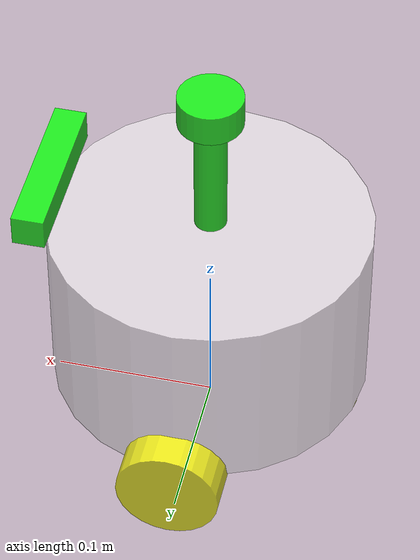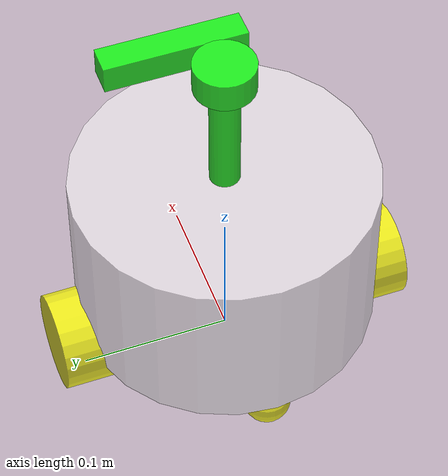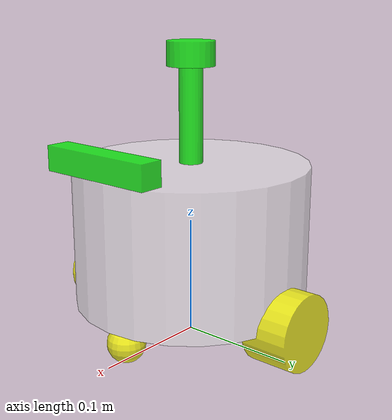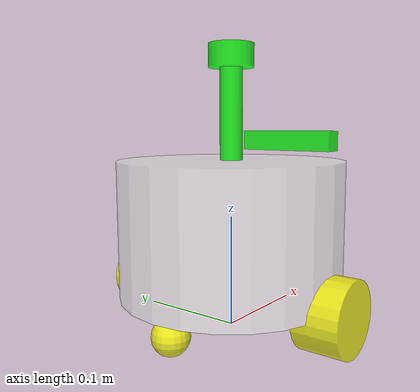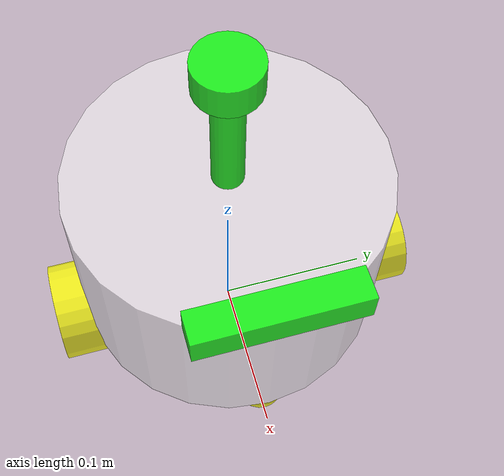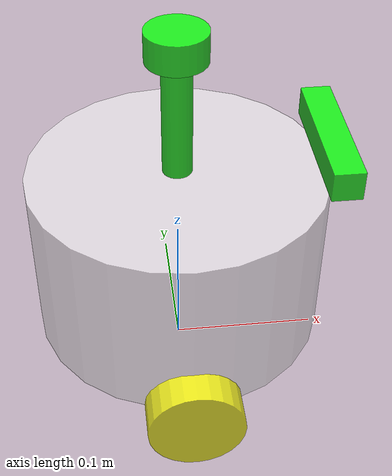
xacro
<?xml version="1.0"?>
<robot xmlns:xacro="http://www.ros.org/wiki/xacro" name="carbot">
<xacro:include filename="$(find car_description_pkg)/urdf/fishbot/base.urdf.xacro"/>
<xacro:include filename="$(find car_description_pkg)/urdf/fishbot/sensor/camera.urdf.xacro"/>
<xacro:include filename="$(find car_description_pkg)/urdf/fishbot/sensor/imu.urdf.xacro"/>
<xacro:include filename="$(find car_description_pkg)/urdf/fishbot/sensor/laser.urdf.xacro"/>

<xacro:include filename="$(find car_description_pkg)/urdf/fishbot/actuator/caster.urdf.xacro"/>
<xacro:include filename="$(find car_description_pkg)/urdf/fishbot/actuator/wheel.urdf.xacro"/>

<xacro:base_xacro length="0.12" radius="0.1"/>
<xacro:imu_xacro xyz="0 0 0.02"/>
<xacro:laser_xacro xyz="0 0 0.10"/>
<xacro:camera_xacro xyz="0.10 0 0.075"/>

<xacro:wheel_xacro wheel_name="left" xyz="0 0.10 -0.06" m="0.05" r="0.032" h="0.04" />
<xacro:wheel_xacro wheel_name="right" xyz="0 -0.10 -0.06" m="0.05" r="0.032" h="0.04" />

<xacro:caster_xacro caster_name="front" xyz="0.08 0.0 -0.076"/>
<xacro:caster_xacro caster_name="back" xyz="-0.08 0.0 -0.076"/>

<xacro:include filename="$(find car_description_pkg)/urdf/fishbot/carbot.ros2_control.xacro" />
<xacro:carbot_ros2_control />
<!--/home/tree/car_description/src/car_description_pkg/urdf/fishbot/carbot.ros2_control.xacro-->

<xacro:include filename="$(find car_description_pkg)/urdf/fishbot/plugins/gazebo_sensor_plugin.xacro"/>
<xacro:gazebo_sensor_plugin />

</robot>

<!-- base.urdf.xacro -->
<robot xmlns:xacro="http://www.ros.org/wiki/xacro">
<xacro:include filename="$(find car_description_pkg)/urdf/fishbot/common_inertia.xacro"/>

    <xacro:macro name="base_xacro" params="length radius">

        <link name="base_link">
            <visual>
                <origin xyz="0.0 0.0 0.0" rpy="0.0 0.0 0.0"/>
                <geometry>
                    <cylinder radius="${radius}" length="${length}"/>
                </geometry>
                <material name="white">
                    <color rgba="1.0 1.0 1.0 0.5"/>
                </material>
            </visual>
            <collision>
                <origin xyz="0.0 0.0 0.0" rpy="0.0 0.0 0.0"/>
                <geometry>
                    <cylinder radius="${radius}" length="${length}"/>
                </geometry>
                <material name="white">
                    <color rgba="1.0 1.0 1.0 0.5"/>
                </material>
            </collision>
            <xacro:cylinder_inertia m="1.0" r="${radius}" h="${length}"/>
        </link>
        <link name="base_footprint"/>
        <joint name="footprint_joint" type="fixed">
            <parent link="base_footprint"/>
            <child link="base_link"/>
            <origin xyz="0 0 ${length/2.0 + 0.032 - 0.001}" rpy="0 0 0"/>
        </joint>

        <gazebo reference="base_link">
            <material>Gazebo/White</material>
        </gazebo>
    </xacro:macro>
</robot>

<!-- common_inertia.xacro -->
<robot xmlns:xacro="http://www.ros.org/wiki/xacro">

<xacro:macro name="box_inertia" params="m w h d">
    <inertial>
        <mass value="${m}"/>
        <inertia ixx="${(m/12)*(h*h+d*d)}" ixy="0.0" ixz="0.0" iyy="${(m/12)*(w*w+d*d)}" iyz="0.0" izz="${(m/12)*(h*h+w*w)}"/>
    </inertial>
</xacro:macro>

<xacro:macro name="cylinder_inertia" params="m r h">
    <inertial>
        <mass value="${m}"/>
        <inertia ixx="${(m/12)*(h*h+3*r*r)}" ixy="0.0" ixz="0.0" iyy="${(m/12)*(h*h+3*r*r)}" iyz="0.0" izz="${(m/2)*(r*r)}"/>
    </inertial>
</xacro:macro>

<xacro:macro name="sphere_inertia" params="m r">
    <inertial>
        <mass value="${m}"/>
        <inertia ixx="${(2/5)*m*r*r}" ixy="0.0" ixz="0.0" iyy="${(2/5)*m*r*r}" iyz="0.0" izz="${(2/5)*m*r*r}"/>
    </inertial>
</xacro:macro>

</robot>

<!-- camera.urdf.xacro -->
<robot xmlns:xacro="http://www.ros.org/wiki/xacro">
<xacro:include filename="$(find car_description_pkg)/urdf/fishbot/common_inertia.xacro"/>

<xacro:macro name="camera_xacro" params="xyz">
    <link name="camera_link">
        <visual>
        <origin xyz="0.0 0.0 0.0" rpy="0.0 0.0 0.0"/>
            <geometry>
                <box size="0.02 0.10 0.02" />
            </geometry>
            <material name="green">
                <color rgba="0 1.0 0 0.8"/>
            </material>
        </visual>
        <collision>
        <origin xyz="0.0 0.0 0.0" rpy="0.0 0.0 0.0"/>
            <geometry>
                <box size="0.02 0.10 0.02" />
            </geometry>
            <material name="green">
                <color rgba="0 1.0 0 0.8"/>
            </material>
        </collision>
        <xacro:box_inertia m="0.1" w="0.02" h="0.10" d="0.02"/>
    </link>
    <joint name="camera_joint" type="fixed">
        <parent link="base_link"/>
        <child link="camera_link"/>
        <origin xyz="${xyz}" rpy="0 0 0"/>
    </joint>

    <link name="camera_optical_link"/>

    <joint name="camera_optical_joint" type="fixed">
        <parent link="camera_link"/>
        <child link="camera_optical_link"/>
        <origin xyz="0 0 0" rpy="${-pi/2} 0 ${-pi/2}"/>
    </joint>

    <gazebo reference="camera_link">
        <material>Gazebo/Green</material>
    </gazebo>
</xacro:macro>
</robot>

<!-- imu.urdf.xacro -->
<robot xmlns:xacro="http://www.ros.org/wiki/xacro">
<xacro:include filename="$(find car_description_pkg)/urdf/fishbot/common_inertia.xacro"/>

    <xacro:macro name="imu_xacro" params="xyz">
        <link name="imu_link">
            <visual>
                <geometry>
                    <box size="0.02 0.02 0.02" />
                </geometry>
                <material name="black">
                    <color rgba="0 0 0 0.8"/>
                </material>
            </visual>
            <collision>
                <geometry>
                    <box size="0.02 0.02 0.02" />
                </geometry>
                <material name="black">
                    <color rgba="0 0 0 0.8"/>
                </material>
            </collision>
            <xacro:box_inertia m="0.05" w="0.02" h="0.02" d="0.02"/>
        </link>

        <joint name="imu_joint" type="fixed">
            <parent link="base_link"/>
            <child link="imu_link"/>
            <origin xyz="0 0 0" rpy="0 0 0"/>
            <axis xyz="${xyz}"/>
        </joint>

    <gazebo reference="imu_link">
        <material>Gazebo/Black</material>
    </gazebo>

    </xacro:macro>

</robot>

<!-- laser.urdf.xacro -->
<robot xmlns:xacro="http://www.ros.org/wiki/xacro">
<xacro:include filename="$(find car_description_pkg)/urdf/fishbot/common_inertia.xacro"/>

<xacro:macro name="laser_xacro" params="xyz">
    <link name="laser_cylinder_link">
        <visual>
        <origin xyz="0 0 0" rpy="0 0 0"/>
            <geometry>
                <cylinder radius="0.01" length="0.1"/>
            </geometry>
            <material name="green">
                <color rgba="0 1.0 0 0.8"/>
            </material>
        </visual>
        <collision>
        <origin xyz="0 0 0" rpy="0 0 0"/>
            <geometry>
                <cylinder radius="0.01" length="0.1"/>
            </geometry>
            <material name="green">
                <color rgba="0 1.0 0 0.8"/>
            </material>
        </collision>
        <xacro:cylinder_inertia m="0.1" r="0.01" h="0.1"/>
    </link>

    <gazebo reference="laser_cylinder_link">
        <material>Gazebo/Green</material>
    </gazebo>

    <joint name="laser_cylinder_joint" type="fixed">
        <parent link="base_link"/>
        <child link="laser_cylinder_link"/>
        <origin xyz="${xyz}"/>
    </joint>

    <link name="laser_link">
        <visual>
        <origin xyz="0 0 0" rpy="0 0 0"/>
            <geometry>
                <cylinder radius="0.02" length="0.02"/>
            </geometry>
            <material name="green">
                <color rgba="0 1.0 0 0.8"/>
            </material>
        </visual>
        <collision>
        <origin xyz="0 0 0" rpy="0 0 0"/>
            <geometry>
                <cylinder radius="0.02" length="0.02"/>
            </geometry>
            <material name="green">
                <color rgba="0 1.0 0 0.8"/>
            </material>
        </collision>
        <xacro:cylinder_inertia m="0.05" r="0.02" h="0.02"/>
    </link>

    <gazebo reference="laser_link">
        <material>Gazebo/Green</material>
    </gazebo>

    <joint name="laser_joint" type="fixed">
        <parent link="laser_cylinder_link"/>
        <child link="laser_link"/>
        <origin xyz="0 0 0.05" rpy="0 0 0"/>
    </joint>
</xacro:macro>
 </robot>

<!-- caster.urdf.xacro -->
<robot xmlns:xacro="http://www.ros.org/wiki/xacro">
<xacro:include filename="$(find car_description_pkg)/urdf/fishbot/common_inertia.xacro"/>

<xacro:macro name="caster_xacro" params="caster_name xyz">
    <link name="${caster_name}_caster_link">
        <visual>
        <origin xyz="0.0 0.0 0.0" rpy="0.0 0.0 0.0"/>
            <geometry>
                <sphere radius="0.016" />
            </geometry>
            <material name="yellow">
                <color rgba="1 1 0 0.8"/>
            </material>
        </visual>
        <collision>
        <origin xyz="0.0 0.0 0.0" rpy="0.0 0.0 0.0"/>
            <geometry>
                <sphere radius="0.016" />
            </geometry>
            <material name="yellow">
                <color rgba="1 1 0 0.8"/>
            </material>
        </collision>
        <xacro:sphere_inertia m="0.05" r="0.016" />
    </link>

    <joint name="${caster_name}_caster_joint" type="fixed">
        <parent link="base_link"/>
        <child link="${caster_name}_caster_link"/>
        <origin xyz="${xyz}" rpy="0 0 0"/>
    </joint>

    <gazebo reference="${caster_name}_caster_link">
        <material>Gazebo/Yellow</material>
        <mu1 value='0.0'/>
        <mu2 value='0.0'/>
        <kp value='1000000.0'/>
        <kd value='1.0'/>
    </gazebo>
</xacro:macro>
</robot>

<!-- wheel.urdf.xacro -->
<robot xmlns:xacro="http://www.ros.org/wiki/xacro">
<xacro:macro name="wheel_xacro" params="wheel_name xyz m r h">

    <link name="${wheel_name}_wheel_link">
        <visual>
        <origin xyz="0.0 0.0 0.0" rpy="1.57079 0.0 0.0"/>
            <geometry>
                <cylinder radius="0.032" length="0.04"/>
            </geometry>
            <material name="yellow">
                <color rgba="1 1 0 0.8"/>
            </material>
        </visual>
        <collision>
        <origin xyz="0.0 0.0 0.0" rpy="1.57079 0.0 0.0"/>
            <geometry>
                <cylinder radius="0.032" length="0.04"/>
            </geometry>
            <material name="yellow">
                <color rgba="1 1 0 0.8"/>
            </material>
        </collision>
        <inertial>
            <origin xyz="0.0 0.0 0.0" rpy="1.57079 0.0 0.0"/>
            <mass value="${m}"/>
            <inertia ixx="${(m/12)*(h*h+3*r*r)}" ixy="0.0" ixz="0.0" iyy="${(m/12)*(h*h+3*r*r)}" iyz="0.0" izz="${(m/2)*(r*r)}"/>
        </inertial>
    </link>

    <joint name="${wheel_name}_wheel_joint" type="continuous">
        <parent link="base_link"/>    <!--base_link-->
        <child link="${wheel_name}_wheel_link"/>
        <origin xyz="${xyz}" rpy="0 0 0"/>
        <axis xyz="0 1 0"/>
    </joint>

    <gazebo reference="${wheel_name}_wheel_link">
        <material>Gazebo/Yellow</material>
        <mu1 value='20.0'/>
        <mu2 value='20.0'/>
        <kp value='1000000.0'/>
        <kd value='1.0'/>
    </gazebo>

</xacro:macro>
</robot>
